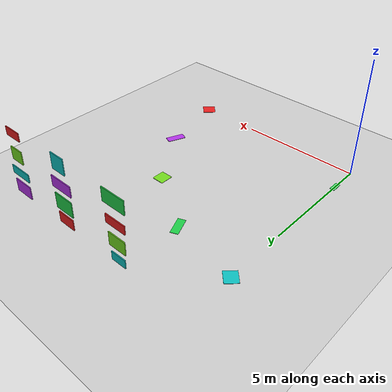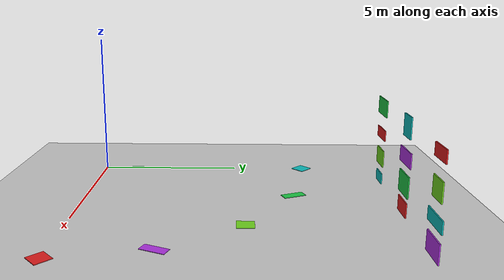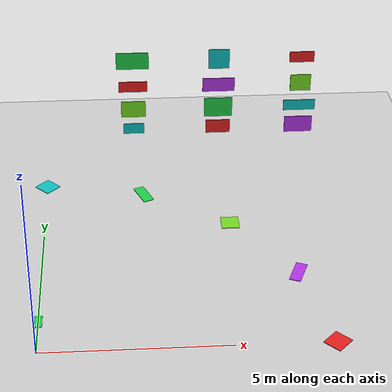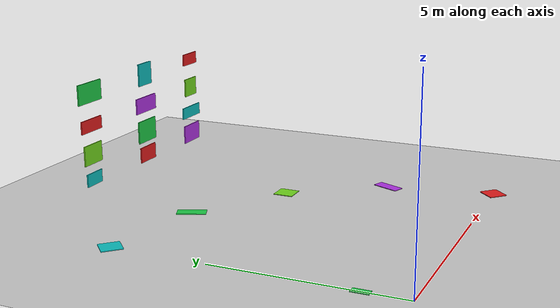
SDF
<sdf version="1.9">
 <world name="vio_marker_arena_half">
  <model name="ground_plane">
   <static>true</static>
   <link name="link">
    <collision name="collision">
     <geometry><plane><normal>0 0 1</normal><size>1 1</size></plane></geometry>
    </collision>
    <visual name="visual">
     <geometry><plane><normal>0 0 1</normal><size>500 500</size></plane></geometry>
     <material>
      <ambient>0.8 0.8 0.8 1</ambient>
      <diffuse>0.8 0.8 0.8 1</diffuse>
      <specular>0.8 0.8 0.8 1</specular>
     </material>
    </visual>
    <inertial>
     <mass>1</mass>
     <inertia><ixx>1</ixx><ixy>0</ixy><ixz>0</ixz><iyy>1</iyy><iyz>0</iyz><izz>1</izz></inertia>
    </inertial>
   </link>
  </model>
  <model name="vio_panel_north_0_4">
   <static>true</static>
   <pose>2.7000 9.9190 0.6500 0.0000 0.0000 0.0000</pose>
   <link name="link">
    <visual name="visual">
     <geometry><box><size>0.6500 0.0350 0.3500</size></box></geometry>
     <material>
      <ambient>0.050 0.750 0.750 1.000</ambient>
      <diffuse>0.050 0.750 0.750 1.000</diffuse>
      <specular>0.10 0.10 0.10 1</specular>
      <emissive>0 0 0 1</emissive>
     </material>
    </visual>
   </link>
  </model>
  <model name="vio_panel_north_0_5">
   <static>true</static>
   <pose>5.4000 9.9190 0.6500 0.0000 0.0000 0.0000</pose>
   <link name="link">
    <visual name="visual">
     <geometry><box><size>0.7700 0.0350 0.4500</size></box></geometry>
     <material>
      <ambient>0.900 0.120 0.120 1.000</ambient>
      <diffuse>0.900 0.120 0.120 1.000</diffuse>
      <specular>0.10 0.10 0.10 1</specular>
      <emissive>0 0 0 1</emissive>
     </material>
    </visual>
   </link>
  </model>
  <model name="vio_panel_north_0_6">
   <static>true</static>
   <pose>8.0000 9.9190 0.6500 0.0000 0.0000 0.0000</pose>
   <link name="link">
    <visual name="visual">
     <geometry><box><size>0.8900 0.0350 0.5500</size></box></geometry>
     <material>
      <ambient>0.700 0.200 0.900 1.000</ambient>
      <diffuse>0.700 0.200 0.900 1.000</diffuse>
      <specular>0.10 0.10 0.10 1</specular>
      <emissive>0 0 0 1</emissive>
     </material>
    </visual>
   </link>
  </model>
  <model name="vio_panel_north_1_4">
   <static>true</static>
   <pose>2.7000 9.9190 1.3500 0.0000 0.0000 0.0000</pose>
   <link name="link">
    <visual name="visual">
     <geometry><box><size>0.7700 0.0350 0.5500</size></box></geometry>
     <material>
      <ambient>0.450 0.850 0.120 1.000</ambient>
      <diffuse>0.450 0.850 0.120 1.000</diffuse>
      <specular>0.10 0.10 0.10 1</specular>
      <emissive>0 0 0 1</emissive>
     </material>
    </visual>
   </link>
  </model>
  <model name="vio_panel_north_1_5">
   <static>true</static>
   <pose>5.4000 9.9190 1.3500 0.0000 0.0000 0.0000</pose>
   <link name="link">
    <visual name="visual">
     <geometry><box><size>0.8900 0.0350 0.6500</size></box></geometry>
     <material>
      <ambient>0.120 0.800 0.280 1.000</ambient>
      <diffuse>0.120 0.800 0.280 1.000</diffuse>
      <specular>0.10 0.10 0.10 1</specular>
      <emissive>0 0 0 1</emissive>
     </material>
    </visual>
   </link>
  </model>
  <model name="vio_panel_north_1_6">
   <static>true</static>
   <pose>8.0000 9.9190 1.3500 0.0000 0.0000 0.0000</pose>
   <link name="link">
    <visual name="visual">
     <geometry><box><size>1.0100 0.0350 0.3500</size></box></geometry>
     <material>
      <ambient>0.050 0.750 0.750 1.000</ambient>
      <diffuse>0.050 0.750 0.750 1.000</diffuse>
      <specular>0.10 0.10 0.10 1</specular>
      <emissive>0 0 0 1</emissive>
     </material>
    </visual>
   </link>
  </model>
  <model name="vio_panel_north_2_4">
   <static>true</static>
   <pose>2.7000 9.9190 2.1500 0.0000 0.0000 0.0000</pose>
   <link name="link">
    <visual name="visual">
     <geometry><box><size>0.8900 0.0350 0.3500</size></box></geometry>
     <material>
      <ambient>0.900 0.120 0.120 1.000</ambient>
      <diffuse>0.900 0.120 0.120 1.000</diffuse>
      <specular>0.10 0.10 0.10 1</specular>
      <emissive>0 0 0 1</emissive>
     </material>
    </visual>
   </link>
  </model>
  <model name="vio_panel_north_2_5">
   <static>true</static>
   <pose>5.4000 9.9190 2.1500 0.0000 0.0000 0.0000</pose>
   <link name="link">
    <visual name="visual">
     <geometry><box><size>1.0100 0.0350 0.4500</size></box></geometry>
     <material>
      <ambient>0.700 0.200 0.900 1.000</ambient>
      <diffuse>0.700 0.200 0.900 1.000</diffuse>
      <specular>0.10 0.10 0.10 1</specular>
      <emissive>0 0 0 1</emissive>
     </material>
    </visual>
   </link>
  </model>
  <model name="vio_panel_north_2_6">
   <static>true</static>
   <pose>8.0000 9.9190 2.1500 0.0000 0.0000 0.0000</pose>
   <link name="link">
    <visual name="visual">
     <geometry><box><size>0.6500 0.0350 0.5500</size></box></geometry>
     <material>
      <ambient>0.450 0.850 0.120 1.000</ambient>
      <diffuse>0.450 0.850 0.120 1.000</diffuse>
      <specular>0.10 0.10 0.10 1</specular>
      <emissive>0 0 0 1</emissive>
     </material>
    </visual>
   </link>
  </model>
  <model name="vio_panel_north_3_4">
   <static>true</static>
   <pose>2.7000 9.9190 3.0500 0.0000 0.0000 0.0000</pose>
   <link name="link">
    <visual name="visual">
     <geometry><box><size>1.0100 0.0350 0.5500</size></box></geometry>
     <material>
      <ambient>0.120 0.800 0.280 1.000</ambient>
      <diffuse>0.120 0.800 0.280 1.000</diffuse>
      <specular>0.10 0.10 0.10 1</specular>
      <emissive>0 0 0 1</emissive>
     </material>
    </visual>
   </link>
  </model>
  <model name="vio_panel_north_3_5">
   <static>true</static>
   <pose>5.4000 9.9190 3.0500 0.0000 0.0000 0.0000</pose>
   <link name="link">
    <visual name="visual">
     <geometry><box><size>0.6500 0.0350 0.6500</size></box></geometry>
     <material>
      <ambient>0.050 0.750 0.750 1.000</ambient>
      <diffuse>0.050 0.750 0.750 1.000</diffuse>
      <specular>0.10 0.10 0.10 1</specular>
      <emissive>0 0 0 1</emissive>
     </material>
    </visual>
   </link>
  </model>
  <model name="vio_panel_north_3_6">
   <static>true</static>
   <pose>8.0000 9.9190 3.0500 0.0000 0.0000 0.0000</pose>
   <link name="link">
    <visual name="visual">
     <geometry><box><size>0.7700 0.0350 0.3500</size></box></geometry>
     <material>
      <ambient>0.900 0.120 0.120 1.000</ambient>
      <diffuse>0.900 0.120 0.120 1.000</diffuse>
      <specular>0.10 0.10 0.10 1</specular>
      <emissive>0 0 0 1</emissive>
     </material>
    </visual>
   </link>
  </model>
  <model name="vio_floor_marker_00">
   <static>true</static>
   <pose>7.6000 0.0000 0.0120 0.0000 0.0000 0.7854</pose>
   <link name="link">
    <visual name="visual">
     <geometry><box><size>0.5500 0.5200 0.0180</size></box></geometry>
     <material>
      <ambient>0.900 0.120 0.120 1.000</ambient>
      <diffuse>0.900 0.120 0.120 1.000</diffuse>
      <specular>0.10 0.10 0.10 1</specular>
      <emissive>0 0 0 1</emissive>
     </material>
    </visual>
   </link>
  </model>
  <model name="vio_floor_marker_02">
   <static>true</static>
   <pose>7.0215 2.9084 0.0120 0.0000 0.0000 1.1781</pose>
   <link name="link">
    <visual name="visual">
     <geometry><box><size>0.7900 0.3200 0.0180</size></box></geometry>
     <material>
      <ambient>0.700 0.200 0.900 1.000</ambient>
      <diffuse>0.700 0.200 0.900 1.000</diffuse>
      <specular>0.10 0.10 0.10 1</specular>
      <emissive>0 0 0 1</emissive>
     </material>
    </visual>
   </link>
  </model>
  <model name="vio_floor_marker_04">
   <static>true</static>
   <pose>5.3740 5.3740 0.0120 0.0000 0.0000 1.5708</pose>
   <link name="link">
    <visual name="visual">
     <geometry><box><size>0.5500 0.5200 0.0180</size></box></geometry>
     <material>
      <ambient>0.450 0.850 0.120 1.000</ambient>
      <diffuse>0.450 0.850 0.120 1.000</diffuse>
      <specular>0.10 0.10 0.10 1</specular>
      <emissive>0 0 0 1</emissive>
     </material>
    </visual>
   </link>
  </model>
  <model name="vio_floor_marker_06">
   <static>true</static>
   <pose>2.9084 7.0215 0.0120 0.0000 0.0000 1.9635</pose>
   <link name="link">
    <visual name="visual">
     <geometry><box><size>0.7900 0.3200 0.0180</size></box></geometry>
     <material>
      <ambient>0.120 0.800 0.280 1.000</ambient>
      <diffuse>0.120 0.800 0.280 1.000</diffuse>
      <specular>0.10 0.10 0.10 1</specular>
      <emissive>0 0 0 1</emissive>
     </material>
    </visual>
   </link>
  </model>
  <model name="vio_floor_marker_08">
   <static>true</static>
   <pose>0.0000 7.6000 0.0120 0.0000 0.0000 2.3562</pose>
   <link name="link">
    <visual name="visual">
     <geometry><box><size>0.5500 0.5200 0.0180</size></box></geometry>
     <material>
      <ambient>0.050 0.750 0.750 1.000</ambient>
      <diffuse>0.050 0.750 0.750 1.000</diffuse>
      <specular>0.10 0.10 0.10 1</specular>
      <emissive>0 0 0 1</emissive>
     </material>
    </visual>
   </link>
  </model>
  <model name="vio_center_marker_2">
   <static>true</static>
   <pose>0.0000 1.2000 0.0130 0.0000 0.0000 1.5708</pose>
   <link name="link">
    <visual name="visual">
     <geometry><box><size>0.4500 0.2000 0.0200</size></box></geometry>
     <material>
      <ambient>0.120 0.800 0.280 1.000</ambient>
      <diffuse>0.120 0.800 0.280 1.000</diffuse>
      <specular>0.10 0.10 0.10 1</specular>
      <emissive>0 0 0 1</emissive>
     </material>
    </visual>
   </link>
  </model>
 </world>
</sdf>
